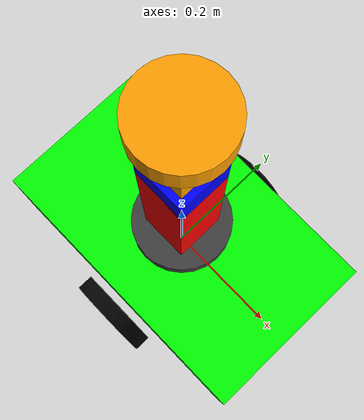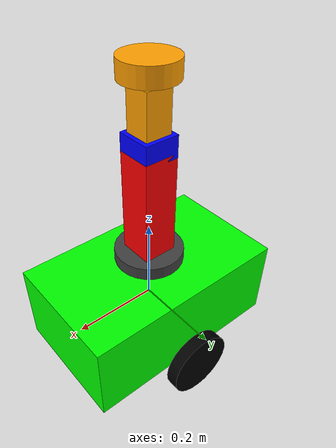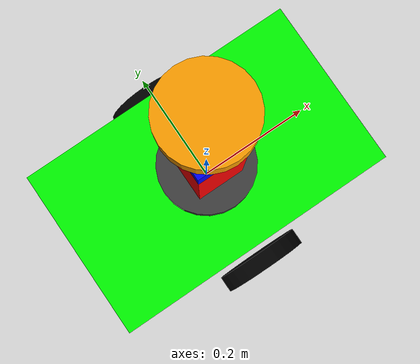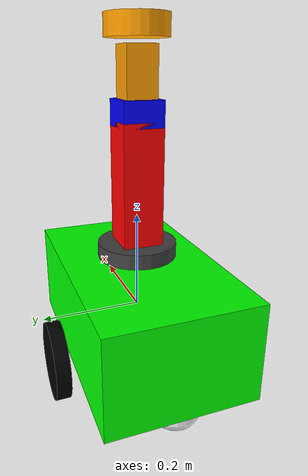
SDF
<sdf version='1.11'>
  <model name='my_robot'>
    <link name='base_link'>
      <inertial>
        <pose>0 0 0.035132743362831863 0 0 0</pose>
        <mass>5.6500000000000004</mass>
        <inertia>
          <ixx>0.13198115044247791</ixx>
          <ixy>0</ixy>
          <ixz>0</ixz>
          <iyy>0.1919811504424779</iyy>
          <iyz>0</iyz>
          <izz>0.1517</izz>
        </inertia>
      </inertial>
      <collision name='base_link_collision'>
        <pose>0 0 0 0 0 0</pose>
        <geometry>
          <box>
            <size>0.5 0.29999999999999999 0.20000000000000001</size>
          </box>
        </geometry>
      </collision>
      <collision name='base_link_fixed_joint_lump__arm_base_link_collision_1'>
        <pose>0 0 0.13 0 0 0</pose>
        <geometry>
          <cylinder>
            <length>0.029999999999999999</length>
            <radius>0.080000000000000002</radius>
          </cylinder>
        </geometry>
      </collision>
      <collision name='base_link_fixed_joint_lump__camera_mount_collision_2'>
        <pose>0 0 0.25 0 0 0</pose>
        <geometry>
          <box>
            <size>0.050000000000000003 0.050000000000000003 0.25</size>
          </box>
        </geometry>
      </collision>
      <collision name='base_link_fixed_joint_lump__camera_link_collision_3'>
        <pose>0 0 0.40000000000000002 0 0 0</pose>
        <geometry>
          <box>
            <size>0.080000000000000002 0.080000000000000002 0.050000000000000003</size>
          </box>
        </geometry>
      </collision>
      <collision name='base_link_fixed_joint_lump__lidar_link_collision_4'>
        <pose>0 0 0.55000000000000004 0 0 0</pose>
        <geometry>
          <cylinder>
            <length>0.040000000000000001</length>
            <radius>0.059999999999999998</radius>
          </cylinder>
        </geometry>
      </collision>
      <collision name='base_link_fixed_joint_lump__caster_wheel_collision_5'>
        <pose>-0.20000000000000001 0 -0.10000000000000001 0 0 0</pose>
        <geometry>
          <sphere>
            <radius>0.050000000000000003</radius>
          </sphere>
        </geometry>
      </collision>
      <visual name='base_link_visual'>
        <pose>0 0 0 0 0 0</pose>
        <geometry>
          <box>
            <size>0.5 0.29999999999999999 0.20000000000000001</size>
          </box>
        </geometry>
        <material>
          <diffuse>0 1 0 1</diffuse>
          <ambient>0 1 0 1</ambient>
        </material>
      </visual>
      <visual name='base_link_fixed_joint_lump__arm_base_link_visual_1'>
        <pose>0 0 0.13 0 0 0</pose>
        <geometry>
          <cylinder>
            <length>0.029999999999999999</length>
            <radius>0.080000000000000002</radius>
          </cylinder>
        </geometry>
        <material>
          <diffuse>0.25 0.25 0.25 1</diffuse>
          <ambient>0.25 0.25 0.25 1</ambient>
        </material>
      </visual>
      <visual name='base_link_fixed_joint_lump__camera_mount_visual_2'>
        <pose>0 0 0.25 0 0 0</pose>
        <geometry>
          <box>
            <size>0.050000000000000003 0.050000000000000003 0.25</size>
          </box>
        </geometry>
        <material>
          <diffuse>0.625 0.625 0.625 1</diffuse>
          <ambient>0.625 0.625 0.625 1</ambient>
        </material>
      </visual>
      <visual name='base_link_fixed_joint_lump__camera_link_visual_3'>
        <pose>0 0 0.40000000000000002 0 0 0</pose>
        <geometry>
          <box>
            <size>0.080000000000000002 0.080000000000000002 0.050000000000000003</size>
          </box>
        </geometry>
        <material>
          <diffuse>0 0 1 1</diffuse>
          <ambient>0 0 1 1</ambient>
        </material>
      </visual>
      <visual name='base_link_fixed_joint_lump__lidar_link_visual_4'>
        <pose>0 0 0.55000000000000004 0 0 0</pose>
        <geometry>
          <cylinder>
            <length>0.040000000000000001</length>
            <radius>0.059999999999999998</radius>
          </cylinder>
        </geometry>
        <material>
          <diffuse>1 0.625 0 1</diffuse>
          <ambient>1 0.625 0 1</ambient>
        </material>
      </visual>
      <visual name='base_link_fixed_joint_lump__caster_wheel_visual_5'>
        <pose>-0.20000000000000001 0 -0.10000000000000001 0 0 0</pose>
        <geometry>
          <sphere>
            <radius>0.050000000000000003</radius>
          </sphere>
        </geometry>
        <material>
          <diffuse>1 1 1 1</diffuse>
          <ambient>1 1 1 1</ambient>
        </material>
      </visual>
    </link>
    <joint name='shoulder_joint' type='revolute'>
      <pose relative_to='base_link'>0 0 0.16 0 0 0</pose>
      <parent>base_link</parent>
      <child>shoulder_link</child>
      <axis>
        <xyz>0 1 0</xyz>
        <limit>
          <lower>-1.5700000000000001</lower>
          <upper>1.5700000000000001</upper>
          <effort>10</effort>
          <velocity>1</velocity>
        </limit>
        <dynamics>
          <spring_reference>0</spring_reference>
          <spring_stiffness>0</spring_stiffness>
        </dynamics>
      </axis>
    </joint>
    <link name='shoulder_link'>
      <pose relative_to='shoulder_joint'>0 0 0 0 0 0</pose>
      <inertial>
        <pose>0 0 0.10000000000000001 0 0 0</pose>
        <mass>0.29999999999999999</mass>
        <inertia>
          <ixx>0.00174</ixx>
          <ixy>0</ixy>
          <ixz>0</ixz>
          <iyy>0.00174</iyy>
          <iyz>0</iyz>
          <izz>0.00032000000000000003</izz>
        </inertia>
      </inertial>
      <collision name='shoulder_link_collision'>
        <pose>0 0 0.10000000000000001 0 0 0</pose>
        <geometry>
          <box>
            <size>0.080000000000000002 0.080000000000000002 0.25</size>
          </box>
        </geometry>
      </collision>
      <visual name='shoulder_link_visual'>
        <pose>0 0 0.10000000000000001 0 0 0</pose>
        <geometry>
          <box>
            <size>0.080000000000000002 0.080000000000000002 0.25</size>
          </box>
        </geometry>
        <material>
          <diffuse>1 0 0 1</diffuse>
          <ambient>1 0 0 1</ambient>
        </material>
      </visual>
    </link>
    <joint name='elbow_joint' type='revolute'>
      <pose relative_to='shoulder_link'>0 0 0.25 0 0 0</pose>
      <parent>shoulder_link</parent>
      <child>upper_arm_link</child>
      <axis>
        <xyz>0 1 0</xyz>
        <limit>
          <lower>-1.5700000000000001</lower>
          <upper>1.5700000000000001</upper>
          <effort>10</effort>
          <velocity>1</velocity>
        </limit>
        <dynamics>
          <spring_reference>0</spring_reference>
          <spring_stiffness>0</spring_stiffness>
        </dynamics>
      </axis>
    </joint>
    <link name='upper_arm_link'>
      <pose relative_to='elbow_joint'>0 0 0 0 0 0</pose>
      <inertial>
        <pose>0 0 0.055 0 0 0</pose>
        <mass>0.20000000000000001</mass>
        <inertia>
          <ixx>0.00023000000000000001</ixx>
          <ixy>0</ixy>
          <ixz>0</ixz>
          <iyy>0.00023000000000000001</iyy>
          <iyz>0</iyz>
          <izz>0.00012</izz>
        </inertia>
      </inertial>
      <collision name='upper_arm_link_collision'>
        <pose>0 0 0.055 0 0 0</pose>
        <geometry>
          <box>
            <size>0.059999999999999998 0.059999999999999998 0.11</size>
          </box>
        </geometry>
      </collision>
      <visual name='upper_arm_link_visual'>
        <pose>0 0 0.055 0 0 0</pose>
        <geometry>
          <box>
            <size>0.059999999999999998 0.059999999999999998 0.11</size>
          </box>
        </geometry>
        <material>
          <diffuse>1 0.625 0 1</diffuse>
          <ambient>1 0.625 0 1</ambient>
        </material>
      </visual>
    </link>
    <joint name='left_wheel_joint' type='revolute'>
      <pose relative_to='base_link'>0 0.17999999999999999 -0.10000000000000001 0 0 0</pose>
      <parent>base_link</parent>
      <child>left_wheel</child>
      <axis>
        <xyz>0 1 0</xyz>
        <limit>
          <lower>-inf</lower>
          <upper>inf</upper>
        </limit>
        <dynamics>
          <spring_reference>0</spring_reference>
          <spring_stiffness>0</spring_stiffness>
        </dynamics>
      </axis>
    </joint>
    <link name='left_wheel'>
      <pose relative_to='left_wheel_joint'>0 0 0 0 0 0</pose>
      <inertial>
        <pose>0 0 0 0 0 0</pose>
        <mass>0.20000000000000001</mass>
        <inertia>
          <ixx>0.00033500000000000001</ixx>
          <ixy>0</ixy>
          <ixz>0</ixz>
          <iyy>0.00033500000000000001</iyy>
          <iyz>0</iyz>
          <izz>0.00064000000000000005</izz>
        </inertia>
      </inertial>
      <collision name='left_wheel_collision'>
        <pose>0 0 0 1.5708 0 0</pose>
        <geometry>
          <cylinder>
            <length>0.029999999999999999</length>
            <radius>0.080000000000000002</radius>
          </cylinder>
        </geometry>
      </collision>
      <visual name='left_wheel_visual'>
        <pose>0 0 0 1.5708 0 0</pose>
        <geometry>
          <cylinder>
            <length>0.029999999999999999</length>
            <radius>0.080000000000000002</radius>
          </cylinder>
        </geometry>
        <material>
          <diffuse>0 0 0 1</diffuse>
          <ambient>0 0 0 1</ambient>
        </material>
      </visual>
    </link>
    <joint name='right_wheel_joint' type='revolute'>
      <pose relative_to='base_link'>0 -0.17999999999999999 -0.10000000000000001 0 0 0</pose>
      <parent>base_link</parent>
      <child>right_wheel</child>
      <axis>
        <xyz>0 1 0</xyz>
        <limit>
          <lower>-inf</lower>
          <upper>inf</upper>
        </limit>
        <dynamics>
          <spring_reference>0</spring_reference>
          <spring_stiffness>0</spring_stiffness>
        </dynamics>
      </axis>
    </joint>
    <link name='right_wheel'>
      <pose relative_to='right_wheel_joint'>0 0 0 0 0 0</pose>
      <inertial>
        <pose>0 0 0 0 0 0</pose>
        <mass>0.20000000000000001</mass>
        <inertia>
          <ixx>0.00033500000000000001</ixx>
          <ixy>0</ixy>
          <ixz>0</ixz>
          <iyy>0.00033500000000000001</iyy>
          <iyz>0</iyz>
          <izz>0.00064000000000000005</izz>
        </inertia>
      </inertial>
      <collision name='right_wheel_collision'>
        <pose>0 0 0 1.5708 0 0</pose>
        <geometry>
          <cylinder>
            <length>0.029999999999999999</length>
            <radius>0.080000000000000002</radius>
          </cylinder>
        </geometry>
      </collision>
      <visual name='right_wheel_visual'>
        <pose>0 0 0 1.5708 0 0</pose>
        <geometry>
          <cylinder>
            <length>0.029999999999999999</length>
            <radius>0.080000000000000002</radius>
          </cylinder>
        </geometry>
        <material>
          <diffuse>0 0 0 1</diffuse>
          <ambient>0 0 0 1</ambient>
        </material>
      </visual>
    </link>
    <frame name='arm_base_joint' attached_to='base_link'>
      <pose>0 0 0.13 0 0 0</pose>
    </frame>
    <frame name='arm_base_link' attached_to='arm_base_joint'>
      <pose>0 0 0 0 0 0</pose>
    </frame>
    <frame name='camera_joint' attached_to='camera_mount'>
      <pose>0 0 0.14999999999999999 0 0 0</pose>
    </frame>
    <frame name='camera_link' attached_to='camera_joint'>
      <pose>0 0 0 0 0 0</pose>
    </frame>
    <frame name='lidar_joint' attached_to='camera_mount'>
      <pose>0 0 0.29999999999999999 0 0 0</pose>
    </frame>
    <frame name='lidar_link' attached_to='lidar_joint'>
      <pose>0 0 0 0 0 0</pose>
    </frame>
    <frame name='camera_mount_joint' attached_to='base_link'>
      <pose>0 0 0.25 0 0 0</pose>
    </frame>
    <frame name='camera_mount' attached_to='camera_mount_joint'>
      <pose>0 0 0 0 0 0</pose>
    </frame>
    <frame name='caster_joint' attached_to='base_link'>
      <pose>-0.20000000000000001 0 -0.10000000000000001 0 0 0</pose>
    </frame>
    <frame name='caster_wheel' attached_to='caster_joint'>
      <pose>0 0 0 0 0 0</pose>
    </frame>
  </model>
</sdf>
